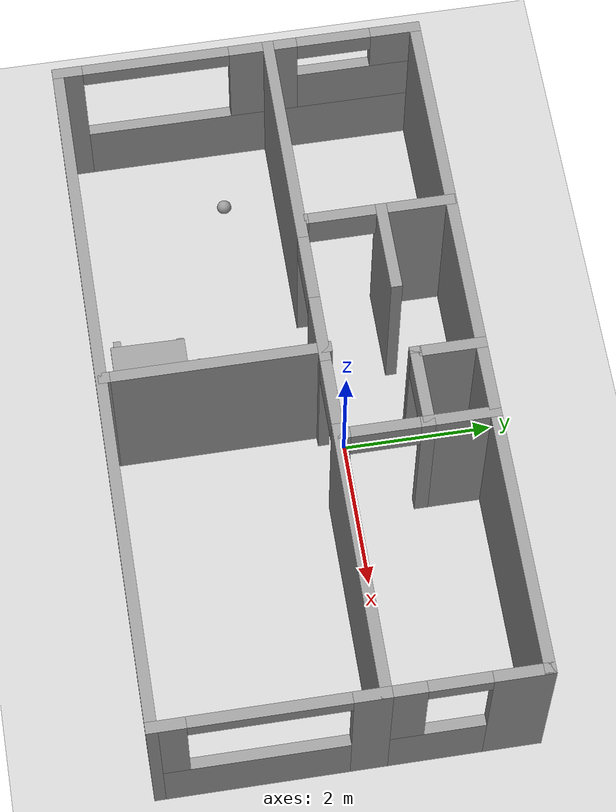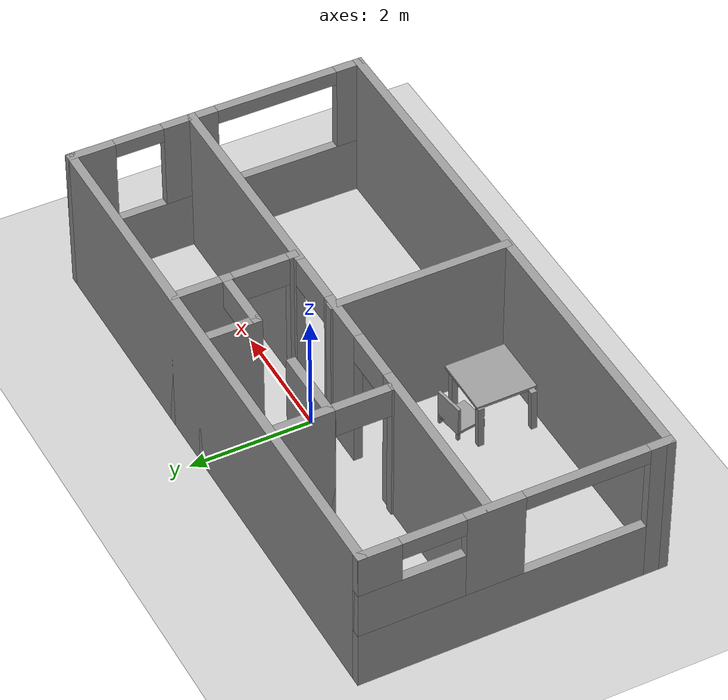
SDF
<sdf version="1.6">
 <world name="default">
  <model name="ground_plane">
   <static>1</static>
   <link name="link">
    <collision name="collision">
     <geometry><plane><normal>0 0 1</normal><size>100 100</size></plane></geometry>
     <surface><friction><ode><mu>100</mu><mu2>50</mu2></ode></friction></surface>
    </collision>
    <visual name="visual">
     <cast_shadows>0</cast_shadows>
     <geometry><plane><normal>0 0 1</normal><size>100 100</size></plane></geometry>
     <material>
      <script><uri>file://media/materials/scripts/gazebo.material</uri><name>Gazebo/Grey</name></script>
     </material>
    </visual>
   </link>
  </model>
  <model name="1stfloor">
   <pose>-0.226451 -0.689234 0 0 -0 0</pose>
   <link name="Wall_0">
    <pose>0 0.425 0 0 -0 0</pose>
    <visual name="Wall_0_Visual_0">
     <pose>-3.21576 0 1.25 0 -0 0</pose>
     <geometry><box><size>3.06848 0.15 2.5</size></box></geometry>
     <material>
      <script><uri>file://media/materials/scripts/gazebo.material</uri><name>Gazebo/Grey</name></script>
      <ambient>1 1 1 1</ambient>
     </material>
     <meta><layer>0</layer></meta>
    </visual>
    <collision name="Wall_0_Collision_0">
     <geometry><box><size>3.06848 0.15 2.5</size></box></geometry>
     <pose>-3.21576 0 1.25 0 -0 0</pose>
    </collision>
    <visual name="Wall_0_Visual_1">
     <pose>-0.318478 0 1.25 0 -0 0</pose>
     <geometry><box><size>0.926087 0.15 2.5</size></box></geometry>
     <material>
      <script><uri>file://media/materials/scripts/gazebo.material</uri><name>Gazebo/Grey</name></script>
      <ambient>1 1 1 1</ambient>
     </material>
     <meta><layer>0</layer></meta>
    </visual>
    <collision name="Wall_0_Collision_1">
     <geometry><box><size>0.926087 0.15 2.5</size></box></geometry>
     <pose>-0.318478 0 1.25 0 -0 0</pose>
    </collision>
    <visual name="Wall_0_Visual_2">
     <pose>2.89728 0 1.25 0 -0 0</pose>
     <geometry><box><size>3.70544 0.15 2.5</size></box></geometry>
     <material>
      <script><uri>file://media/materials/scripts/gazebo.material</uri><name>Gazebo/Grey</name></script>
      <ambient>1 1 1 1</ambient>
     </material>
     <meta><layer>0</layer></meta>
    </visual>
    <collision name="Wall_0_Collision_2">
     <geometry><box><size>3.70544 0.15 2.5</size></box></geometry>
     <pose>2.89728 0 1.25 0 -0 0</pose>
    </collision>
    <visual name="Wall_0_Visual_3">
     <pose>-1.23152 0 2.25 0 -0 0</pose>
     <geometry><box><size>0.9 0.15 0.5</size></box></geometry>
     <material>
      <script><uri>file://media/materials/scripts/gazebo.material</uri><name>Gazebo/Grey</name></script>
      <ambient>1 1 1 1</ambient>
     </material>
     <meta><layer>0</layer></meta>
    </visual>
    <collision name="Wall_0_Collision_3">
     <geometry><box><size>0.9 0.15 0.5</size></box></geometry>
     <pose>-1.23152 0 2.25 0 -0 0</pose>
    </collision>
    <visual name="Wall_0_Visual_4">
     <pose>0.594565 0 2.25 0 -0 0</pose>
     <geometry><box><size>0.9 0.15 0.5</size></box></geometry>
     <material>
      <script><uri>file://media/materials/scripts/gazebo.material</uri><name>Gazebo/Grey</name></script>
      <ambient>1 1 1 1</ambient>
     </material>
     <meta><layer>0</layer></meta>
    </visual>
    <collision name="Wall_0_Collision_4">
     <geometry><box><size>0.9 0.15 0.5</size></box></geometry>
     <pose>0.594565 0 2.25 0 -0 0</pose>
    </collision>
   </link>
   <link name="Wall_1">
    <pose>4.675 -1 0 0 0 -1.5708</pose>
    <visual name="Wall_1_Visual_0">
     <pose>-1.2588 0 1.25 0 -0 0</pose>
     <geometry><box><size>0.482391 0.15 2.5</size></box></geometry>
     <material>
      <script><uri>file://media/materials/scripts/gazebo.material</uri><name>Gazebo/Grey</name></script>
      <ambient>1 1 1 1</ambient>
     </material>
     <meta><layer>0</layer></meta>
    </visual>
    <collision name="Wall_1_Collision_0">
     <geometry><box><size>0.482391 0.15 2.5</size></box></geometry>
     <pose>-1.2588 0 1.25 0 -0 0</pose>
    </collision>
    <visual name="Wall_1_Visual_1">
     <pose>0.241196 0 0.5 0 -0 0</pose>
     <geometry><box><size>2.51761 0.15 1</size></box></geometry>
     <material>
      <script><uri>file://media/materials/scripts/gazebo.material</uri><name>Gazebo/Grey</name></script>
      <ambient>1 1 1 1</ambient>
     </material>
     <meta><layer>0</layer></meta>
    </visual>
    <collision name="Wall_1_Collision_1">
     <geometry><box><size>2.51761 0.15 1</size></box></geometry>
     <pose>0.241196 0 0.5 0 -0 0</pose>
    </collision>
    <visual name="Wall_1_Visual_2">
     <pose>1.2512 0 1.75 0 -0 0</pose>
     <geometry><box><size>0.497609 0.15 1.5</size></box></geometry>
     <material>
      <script><uri>file://media/materials/scripts/gazebo.material</uri><name>Gazebo/Grey</name></script>
      <ambient>1 1 1 1</ambient>
     </material>
     <meta><layer>0</layer></meta>
    </visual>
    <collision name="Wall_1_Collision_2">
     <geometry><box><size>0.497609 0.15 1.5</size></box></geometry>
     <pose>1.2512 0 1.75 0 -0 0</pose>
    </collision>
    <visual name="Wall_1_Visual_3">
     <pose>-0.007609 0 2.375 0 -0 0</pose>
     <geometry><box><size>2.02 0.15 0.25</size></box></geometry>
     <material>
      <script><uri>file://media/materials/scripts/gazebo.material</uri><name>Gazebo/Grey</name></script>
      <ambient>1 1 1 1</ambient>
     </material>
     <meta><layer>0</layer></meta>
    </visual>
    <collision name="Wall_1_Collision_3">
     <geometry><box><size>2.02 0.15 0.25</size></box></geometry>
     <pose>-0.007609 0 2.375 0 -0 0</pose>
    </collision>
   </link>
   <link name="Wall_10">
    <collision name="Wall_10_Collision">
     <geometry><box><size>3 0.15 2.5</size></box></geometry>
     <pose>0 0 1.25 0 -0 0</pose>
    </collision>
    <visual name="Wall_10_Visual">
     <pose>0 0 1.25 0 -0 0</pose>
     <geometry><box><size>3 0.15 2.5</size></box></geometry>
     <material>
      <script><uri>file://media/materials/scripts/gazebo.material</uri><name>Gazebo/Grey</name></script>
      <ambient>1 1 1 1</ambient>
     </material>
     <meta><layer>0</layer></meta>
    </visual>
    <pose>-0.048913 -0.965217 0 0 0 -1.5708</pose>
   </link>
   <link name="Wall_11">
    <collision name="Wall_11_Collision">
     <geometry><box><size>0.15 0.15 2.5</size></box></geometry>
     <pose>0 0 1.25 0 -0 0</pose>
    </collision>
    <visual name="Wall_11_Visual">
     <pose>0 0 1.25 0 -0 0</pose>
     <geometry><box><size>0.15 0.15 2.5</size></box></geometry>
     <material>
      <script><uri>file://media/materials/scripts/gazebo.material</uri><name>Gazebo/Grey</name></script>
      <ambient>1 1 1 1</ambient>
     </material>
     <meta><layer>0</layer></meta>
    </visual>
    <pose>-0.048913 -2.39022 0 0 -0 0</pose>
   </link>
   <link name="Wall_13">
    <pose>-1.94457 1.48261 0 0 0 -1.5708</pose>
    <visual name="Wall_13_Visual_0">
     <pose>-0.474457 0 1.25 0 -0 0</pose>
     <geometry><box><size>1.05109 0.15 2.5</size></box></geometry>
     <material>
      <script><uri>file://media/materials/scripts/gazebo.material</uri><name>Gazebo/Grey</name></script>
      <ambient>1 1 1 1</ambient>
     </material>
     <meta><layer>0</layer></meta>
    </visual>
    <collision name="Wall_13_Collision_0">
     <geometry><box><size>1.05109 0.15 2.5</size></box></geometry>
     <pose>-0.474457 0 1.25 0 -0 0</pose>
    </collision>
    <visual name="Wall_13_Visual_1">
     <pose>0.975543 0 1.25 0 -0 0</pose>
     <geometry><box><size>0.048913 0.15 2.5</size></box></geometry>
     <material>
      <script><uri>file://media/materials/scripts/gazebo.material</uri><name>Gazebo/Grey</name></script>
      <ambient>1 1 1 1</ambient>
     </material>
     <meta><layer>0</layer></meta>
    </visual>
    <collision name="Wall_13_Collision_1">
     <geometry><box><size>0.048913 0.15 2.5</size></box></geometry>
     <pose>0.975543 0 1.25 0 -0 0</pose>
    </collision>
    <visual name="Wall_13_Visual_2">
     <pose>0.501087 0 2.25 0 -0 0</pose>
     <geometry><box><size>0.9 0.15 0.5</size></box></geometry>
     <material>
      <script><uri>file://media/materials/scripts/gazebo.material</uri><name>Gazebo/Grey</name></script>
      <ambient>1 1 1 1</ambient>
     </material>
     <meta><layer>0</layer></meta>
    </visual>
    <collision name="Wall_13_Collision_2">
     <geometry><box><size>0.9 0.15 0.5</size></box></geometry>
     <pose>0.501087 0 2.25 0 -0 0</pose>
    </collision>
   </link>
   <link name="Wall_15">
    <collision name="Wall_15_Collision">
     <geometry><box><size>1 0.15 2.5</size></box></geometry>
     <pose>0 0 1.25 0 -0 0</pose>
    </collision>
    <visual name="Wall_15_Visual">
     <pose>0 0 1.25 0 -0 0</pose>
     <geometry><box><size>1 0.15 2.5</size></box></geometry>
     <material>
      <script><uri>file://media/materials/scripts/gazebo.material</uri><name>Gazebo/Grey</name></script>
      <ambient>1 1 1 1</ambient>
     </material>
     <meta><layer>0</layer></meta>
    </visual>
    <pose>0.194565 2 0 0 0 -1.5708</pose>
   </link>
   <link name="Wall_17">
    <collision name="Wall_17_Collision">
     <geometry><box><size>1 0.15 2.5</size></box></geometry>
     <pose>0 0 1.25 0 -0 0</pose>
    </collision>
    <visual name="Wall_17_Visual">
     <pose>0 0 1.25 0 -0 0</pose>
     <geometry><box><size>1 0.15 2.5</size></box></geometry>
     <material>
      <script><uri>file://media/materials/scripts/gazebo.material</uri><name>Gazebo/Grey</name></script>
      <ambient>1 1 1 1</ambient>
     </material>
     <meta><layer>0</layer></meta>
    </visual>
    <pose>1.18587 2 0 0 0 -1.5708</pose>
   </link>
   <link name="Wall_18">
    <pose>0.690217 1.575 0 0 -0 3.14159</pose>
    <visual name="Wall_18_Visual_0">
     <pose>-0.497283 0 1.25 0 -0 0</pose>
     <geometry><box><size>0.146739 0.15 2.5</size></box></geometry>
     <material>
      <script><uri>file://media/materials/scripts/gazebo.material</uri><name>Gazebo/Grey</name></script>
      <ambient>1 1 1 1</ambient>
     </material>
     <meta><layer>0</layer></meta>
    </visual>
    <collision name="Wall_18_Collision_0">
     <geometry><box><size>0.146739 0.15 2.5</size></box></geometry>
     <pose>-0.497283 0 1.25 0 -0 0</pose>
    </collision>
    <visual name="Wall_18_Visual_1">
     <pose>0.52337 0 1.25 0 -0 0</pose>
     <geometry><box><size>0.094565 0.15 2.5</size></box></geometry>
     <material>
      <script><uri>file://media/materials/scripts/gazebo.material</uri><name>Gazebo/Grey</name></script>
      <ambient>1 1 1 1</ambient>
     </material>
     <meta><layer>0</layer></meta>
    </visual>
    <collision name="Wall_18_Collision_1">
     <geometry><box><size>0.094565 0.15 2.5</size></box></geometry>
     <pose>0.52337 0 1.25 0 -0 0</pose>
    </collision>
    <visual name="Wall_18_Visual_2">
     <pose>0.026087 0 2.25 0 -0 0</pose>
     <geometry><box><size>0.9 0.15 0.5</size></box></geometry>
     <material>
      <script><uri>file://media/materials/scripts/gazebo.material</uri><name>Gazebo/Grey</name></script>
      <ambient>1 1 1 1</ambient>
     </material>
     <meta><layer>0</layer></meta>
    </visual>
    <collision name="Wall_18_Collision_2">
     <geometry><box><size>0.9 0.15 0.5</size></box></geometry>
     <pose>0.026087 0 2.25 0 -0 0</pose>
    </collision>
   </link>
   <link name="Wall_19">
    <collision name="Wall_19_Collision">
     <geometry><box><size>0.15 0.15 2.5</size></box></geometry>
     <pose>0 0 1.25 0 -0 0</pose>
    </collision>
    <visual name="Wall_19_Visual">
     <pose>0 0 1.25 0 -0 0</pose>
     <geometry><box><size>0.15 0.15 2.5</size></box></geometry>
     <material>
      <script><uri>file://media/materials/scripts/gazebo.material</uri><name>Gazebo/Grey</name></script>
      <ambient>1 1 1 1</ambient>
     </material>
     <meta><layer>0</layer></meta>
    </visual>
    <pose>0.194565 1.575 0 0 -0 0</pose>
   </link>
   <link name="Wall_2">
    <collision name="Wall_2_Collision">
     <geometry><box><size>9.5 0.15 2.5</size></box></geometry>
     <pose>0 0 1.25 0 -0 0</pose>
    </collision>
    <visual name="Wall_2_Visual">
     <pose>0 0 1.25 0 -0 0</pose>
     <geometry><box><size>9.5 0.15 2.5</size></box></geometry>
     <material>
      <script><uri>file://media/materials/scripts/gazebo.material</uri><name>Gazebo/Grey</name></script>
      <ambient>1 1 1 1</ambient>
     </material>
     <meta><layer>0</layer></meta>
    </visual>
    <pose>0 -2.425 0 0 -0 3.14159</pose>
   </link>
   <link name="Wall_21">
    <pose>1.18587 1.025 0 0 0 -1.5708</pose>
    <visual name="Wall_21_Visual_0">
     <pose>-0.533152 0 1.25 0 -0 0</pose>
     <geometry><box><size>0.183696 0.15 2.5</size></box></geometry>
     <material>
      <script><uri>file://media/materials/scripts/gazebo.material</uri><name>Gazebo/Grey</name></script>
      <ambient>1 1 1 1</ambient>
     </material>
     <meta><layer>0</layer></meta>
    </visual>
    <collision name="Wall_21_Collision_0">
     <geometry><box><size>0.183696 0.15 2.5</size></box></geometry>
     <pose>-0.533152 0 1.25 0 -0 0</pose>
    </collision>
    <visual name="Wall_21_Visual_1">
     <pose>0.541848 0 1.25 0 -0 0</pose>
     <geometry><box><size>0.166304 0.15 2.5</size></box></geometry>
     <material>
      <script><uri>file://media/materials/scripts/gazebo.material</uri><name>Gazebo/Grey</name></script>
      <ambient>1 1 1 1</ambient>
     </material>
     <meta><layer>0</layer></meta>
    </visual>
    <collision name="Wall_21_Collision_1">
     <geometry><box><size>0.166304 0.15 2.5</size></box></geometry>
     <pose>0.541848 0 1.25 0 -0 0</pose>
    </collision>
    <visual name="Wall_21_Visual_2">
     <pose>0.008696 0 2.25 0 -0 0</pose>
     <geometry><box><size>0.9 0.15 0.5</size></box></geometry>
     <material>
      <script><uri>file://media/materials/scripts/gazebo.material</uri><name>Gazebo/Grey</name></script>
      <ambient>1 1 1 1</ambient>
     </material>
     <meta><layer>0</layer></meta>
    </visual>
    <collision name="Wall_21_Collision_2">
     <geometry><box><size>0.9 0.15 0.5</size></box></geometry>
     <pose>0.008696 0 2.25 0 -0 0</pose>
    </collision>
   </link>
   <link name="Wall_23">
    <collision name="Wall_23_Collision">
     <geometry><box><size>1.25 0.15 2.5</size></box></geometry>
     <pose>0 0 1.25 0 -0 0</pose>
    </collision>
    <visual name="Wall_23_Visual">
     <pose>0 0 1.25 0 -0 0</pose>
     <geometry><box><size>1.25 0.15 2.5</size></box></geometry>
     <material>
      <script><uri>file://media/materials/scripts/gazebo.material</uri><name>Gazebo/Grey</name></script>
      <ambient>1 1 1 1</ambient>
     </material>
     <meta><layer>0</layer></meta>
    </visual>
    <pose>-1.39457 1.50326 0 0 -0 0</pose>
   </link>
   <link name="Wall_3">
    <pose>-4.675 0 0 0 -0 1.5708</pose>
    <visual name="Wall_3_Visual_0">
     <pose>-2.29772 0 1.25 0 -0 0</pose>
     <geometry><box><size>0.404565 0.15 2.5</size></box></geometry>
     <material>
      <script><uri>file://media/materials/scripts/gazebo.material</uri><name>Gazebo/Grey</name></script>
      <ambient>1 1 1 1</ambient>
     </material>
     <meta><layer>0</layer></meta>
    </visual>
    <collision name="Wall_3_Collision_0">
     <geometry><box><size>0.404565 0.15 2.5</size></box></geometry>
     <pose>-2.29772 0 1.25 0 -0 0</pose>
    </collision>
    <visual name="Wall_3_Visual_1">
     <pose>0.202283 0 0.5 0 -0 0</pose>
     <geometry><box><size>4.59544 0.15 1</size></box></geometry>
     <material>
      <script><uri>file://media/materials/scripts/gazebo.material</uri><name>Gazebo/Grey</name></script>
      <ambient>1 1 1 1</ambient>
     </material>
     <meta><layer>0</layer></meta>
    </visual>
    <collision name="Wall_3_Collision_1">
     <geometry><box><size>4.59544 0.15 1</size></box></geometry>
     <pose>0.202283 0 0.5 0 -0 0</pose>
    </collision>
    <visual name="Wall_3_Visual_2">
     <pose>0.348261 0 1.75 0 -0 0</pose>
     <geometry><box><size>0.927391 0.15 1.5</size></box></geometry>
     <material>
      <script><uri>file://media/materials/scripts/gazebo.material</uri><name>Gazebo/Grey</name></script>
      <ambient>1 1 1 1</ambient>
     </material>
     <meta><layer>0</layer></meta>
    </visual>
    <collision name="Wall_3_Collision_2">
     <geometry><box><size>0.927391 0.15 1.5</size></box></geometry>
     <pose>0.348261 0 1.75 0 -0 0</pose>
    </collision>
    <visual name="Wall_3_Visual_3">
     <pose>1.65598 0 1.4 0 -0 0</pose>
     <geometry><box><size>1.68804 0.15 0.8</size></box></geometry>
     <material>
      <script><uri>file://media/materials/scripts/gazebo.material</uri><name>Gazebo/Grey</name></script>
      <ambient>1 1 1 1</ambient>
     </material>
     <meta><layer>0</layer></meta>
    </visual>
    <collision name="Wall_3_Collision_3">
     <geometry><box><size>1.68804 0.15 0.8</size></box></geometry>
     <pose>1.65598 0 1.4 0 -0 0</pose>
    </collision>
    <visual name="Wall_3_Visual_4">
     <pose>2.15598 0 2.15 0 -0 0</pose>
     <geometry><box><size>0.688044 0.15 0.7</size></box></geometry>
     <material>
      <script><uri>file://media/materials/scripts/gazebo.material</uri><name>Gazebo/Grey</name></script>
      <ambient>1 1 1 1</ambient>
     </material>
     <meta><layer>0</layer></meta>
    </visual>
    <collision name="Wall_3_Collision_4">
     <geometry><box><size>0.688044 0.15 0.7</size></box></geometry>
     <pose>2.15598 0 2.15 0 -0 0</pose>
    </collision>
    <visual name="Wall_3_Visual_5">
     <pose>1.31196 0 2.35 0 -0 0</pose>
     <geometry><box><size>1 0.15 0.3</size></box></geometry>
     <material>
      <script><uri>file://media/materials/scripts/gazebo.material</uri><name>Gazebo/Grey</name></script>
      <ambient>1 1 1 1</ambient>
     </material>
     <meta><layer>0</layer></meta>
    </visual>
    <collision name="Wall_3_Collision_5">
     <geometry><box><size>1 0.15 0.3</size></box></geometry>
     <pose>1.31196 0 2.35 0 -0 0</pose>
    </collision>
    <visual name="Wall_3_Visual_6">
     <pose>-1.10543 0 2.375 0 -0 0</pose>
     <geometry><box><size>1.98 0.15 0.25</size></box></geometry>
     <material>
      <script><uri>file://media/materials/scripts/gazebo.material</uri><name>Gazebo/Grey</name></script>
      <ambient>1 1 1 1</ambient>
     </material>
     <meta><layer>0</layer></meta>
    </visual>
    <collision name="Wall_3_Collision_6">
     <geometry><box><size>1.98 0.15 0.25</size></box></geometry>
     <pose>-1.10543 0 2.375 0 -0 0</pose>
    </collision>
   </link>
   <link name="Wall_4">
    <collision name="Wall_4_Collision">
     <geometry><box><size>9.5 0.15 2.5</size></box></geometry>
     <pose>0 0 1.25 0 -0 0</pose>
    </collision>
    <visual name="Wall_4_Visual">
     <pose>0 0 1.25 0 -0 0</pose>
     <geometry><box><size>9.5 0.15 2.5</size></box></geometry>
     <material>
      <script><uri>file://media/materials/scripts/gazebo.material</uri><name>Gazebo/Grey</name></script>
      <ambient>1 1 1 1</ambient>
     </material>
     <meta><layer>0</layer></meta>
    </visual>
    <pose>0 2.425 0 0 -0 0</pose>
   </link>
   <link name="Wall_5">
    <collision name="Wall_5_Collision">
     <geometry><box><size>0.15 0.15 2.5</size></box></geometry>
     <pose>0 0 1.25 0 -0 0</pose>
    </collision>
    <visual name="Wall_5_Visual">
     <pose>0 0 1.25 0 -0 0</pose>
     <geometry><box><size>0.15 0.15 2.5</size></box></geometry>
     <material>
      <script><uri>file://media/materials/scripts/gazebo.material</uri><name>Gazebo/Grey</name></script>
      <ambient>1 1 1 1</ambient>
     </material>
     <meta><layer>0</layer></meta>
    </visual>
    <pose>4.675 2.425 0 0 -0 0</pose>
   </link>
   <link name="Wall_7">
    <pose>4.675 1.425 0 0 0 -1.5708</pose>
    <visual name="Wall_7_Visual_0">
     <pose>-0.689674 0 1.25 0 -0 0</pose>
     <geometry><box><size>0.770652 0.15 2.5</size></box></geometry>
     <material>
      <script><uri>file://media/materials/scripts/gazebo.material</uri><name>Gazebo/Grey</name></script>
      <ambient>1 1 1 1</ambient>
     </material>
     <meta><layer>0</layer></meta>
    </visual>
    <collision name="Wall_7_Collision_0">
     <geometry><box><size>0.770652 0.15 2.5</size></box></geometry>
     <pose>-0.689674 0 1.25 0 -0 0</pose>
    </collision>
    <visual name="Wall_7_Visual_1">
     <pose>0.385326 0 0.5 0 -0 0</pose>
     <geometry><box><size>1.37935 0.15 1</size></box></geometry>
     <material>
      <script><uri>file://media/materials/scripts/gazebo.material</uri><name>Gazebo/Grey</name></script>
      <ambient>1 1 1 1</ambient>
     </material>
     <meta><layer>0</layer></meta>
    </visual>
    <collision name="Wall_7_Collision_1">
     <geometry><box><size>1.37935 0.15 1</size></box></geometry>
     <pose>0.385326 0 0.5 0 -0 0</pose>
    </collision>
    <visual name="Wall_7_Visual_2">
     <pose>0.785326 0 1.75 0 -0 0</pose>
     <geometry><box><size>0.579348 0.15 1.5</size></box></geometry>
     <material>
      <script><uri>file://media/materials/scripts/gazebo.material</uri><name>Gazebo/Grey</name></script>
      <ambient>1 1 1 1</ambient>
     </material>
     <meta><layer>0</layer></meta>
    </visual>
    <collision name="Wall_7_Collision_2">
     <geometry><box><size>0.579348 0.15 1.5</size></box></geometry>
     <pose>0.785326 0 1.75 0 -0 0</pose>
    </collision>
    <visual name="Wall_7_Visual_3">
     <pose>0.095652 0 2.375 0 -0 0</pose>
     <geometry><box><size>0.8 0.15 0.25</size></box></geometry>
     <material>
      <script><uri>file://media/materials/scripts/gazebo.material</uri><name>Gazebo/Grey</name></script>
      <ambient>1 1 1 1</ambient>
     </material>
     <meta><layer>0</layer></meta>
    </visual>
    <collision name="Wall_7_Collision_3">
     <geometry><box><size>0.8 0.15 0.25</size></box></geometry>
     <pose>0.095652 0 2.375 0 -0 0</pose>
    </collision>
   </link>
   <link name="Wall_8">
    <collision name="Wall_8_Collision">
     <geometry><box><size>0.15 0.15 2.5</size></box></geometry>
     <pose>0 0 1.25 0 -0 0</pose>
    </collision>
    <visual name="Wall_8_Visual">
     <pose>0 0 1.25 0 -0 0</pose>
     <geometry><box><size>0.15 0.15 2.5</size></box></geometry>
     <material>
      <script><uri>file://media/materials/scripts/gazebo.material</uri><name>Gazebo/Grey</name></script>
      <ambient>1 1 1 1</ambient>
     </material>
     <meta><layer>0</layer></meta>
    </visual>
    <pose>4.675 0.425 0 0 -0 0</pose>
   </link>
   <static>1</static>
  </model>
  <model name="table">
   <link name="link_2">
    <pose>-0.000914 0.01077 -0.287764 0 -0 0</pose>
    <inertial>
     <mass>1</mass>
     <inertia>
      <ixx>0.166667</ixx>
      <ixy>0</ixy>
      <ixz>0</ixz>
      <iyy>0.166667</iyy>
      <iyz>0</iyz>
      <izz>0.166667</izz>
     </inertia>
    </inertial>
    <visual name="visual">
     <pose>0 0 0.75 0 -0 0</pose>
     <geometry><box><size>1 1 0.05</size></box></geometry>
     <material>
      <lighting>1</lighting>
      <script><uri>file://media/materials/scripts/gazebo.material</uri><name>Gazebo/Grey</name></script>
      <ambient>0.3 0.3 0.3 1</ambient>
      <diffuse>0.7 0.7 0.7 1</diffuse>
      <specular>0.01 0.01 0.01 1</specular>
      <emissive>0 0 0 1</emissive>
      <shader type="vertex"><normal_map>__default__</normal_map></shader>
     </material>
    </visual>
    <collision name="collision">
     <pose>0 0 0.75 0 -0 0</pose>
     <geometry><box><size>1 1 0.05</size></box></geometry>
     <surface>
      <friction>
       <ode><mu>1</mu><mu2>1</mu2><fdir1>0 0 0</fdir1><slip1>0</slip1><slip2>0</slip2></ode>
       <torsional>
        <coefficient>1</coefficient>
        <patch_radius>0</patch_radius>
        <surface_radius>0</surface_radius>
        <use_patch_radius>1</use_patch_radius>
        <ode><slip>0</slip></ode>
       </torsional>
      </friction>
      <bounce><restitution_coefficient>0</restitution_coefficient><threshold>1e+06</threshold></bounce>
      <contact>
       <collide_without_contact>0</collide_without_contact>
       <collide_without_contact_bitmask>1</collide_without_contact_bitmask>
       <collide_bitmask>1</collide_bitmask>
       <ode>
        <soft_cfm>0</soft_cfm>
        <soft_erp>0.2</soft_erp>
        <kp>1e+13</kp>
        <kd>1</kd>
        <max_vel>0.01</max_vel>
        <min_depth>0</min_depth>
       </ode>
       <bullet>
        <split_impulse>1</split_impulse>
        <split_impulse_penetration_threshold>-0.01</split_impulse_penetration_threshold>
        <soft_cfm>0</soft_cfm>
        <soft_erp>0.2</soft_erp>
        <kp>1e+13</kp>
        <kd>1</kd>
       </bullet>
      </contact>
     </surface>
    </collision>
   </link>
   <link name="link_3">
    <pose>-0.483131 0.454991 0.080236 0 -0 0</pose>
    <inertial>
     <mass>1</mass>
     <inertia>
      <ixx>0.166667</ixx>
      <ixy>0</ixy>
      <ixz>0</ixz>
      <iyy>0.166667</iyy>
      <iyz>0</iyz>
      <izz>0.166667</izz>
     </inertia>
    </inertial>
    <visual name="visual">
     <geometry><box><size>0.1 0.1 0.75</size></box></geometry>
     <material>
      <lighting>1</lighting>
      <script><uri>file://media/materials/scripts/gazebo.material</uri><name>Gazebo/Grey</name></script>
      <ambient>0.3 0.3 0.3 1</ambient>
      <diffuse>0.7 0.7 0.7 1</diffuse>
      <specular>0.01 0.01 0.01 1</specular>
      <emissive>0 0 0 1</emissive>
      <shader type="vertex"><normal_map>__default__</normal_map></shader>
     </material>
    </visual>
    <collision name="collision">
     <geometry><box><size>0.1 0.1 0.75</size></box></geometry>
     <surface>
      <friction>
       <ode><mu>1</mu><mu2>1</mu2><fdir1>0 0 0</fdir1><slip1>0</slip1><slip2>0</slip2></ode>
       <torsional>
        <coefficient>1</coefficient>
        <patch_radius>0</patch_radius>
        <surface_radius>0</surface_radius>
        <use_patch_radius>1</use_patch_radius>
        <ode><slip>0</slip></ode>
       </torsional>
      </friction>
      <bounce><restitution_coefficient>0</restitution_coefficient><threshold>1e+06</threshold></bounce>
      <contact>
       <collide_without_contact>0</collide_without_contact>
       <collide_without_contact_bitmask>1</collide_without_contact_bitmask>
       <collide_bitmask>1</collide_bitmask>
       <ode>
        <soft_cfm>0</soft_cfm>
        <soft_erp>0.2</soft_erp>
        <kp>1e+13</kp>
        <kd>1</kd>
        <max_vel>0.01</max_vel>
        <min_depth>0</min_depth>
       </ode>
       <bullet>
        <split_impulse>1</split_impulse>
        <split_impulse_penetration_threshold>-0.01</split_impulse_penetration_threshold>
        <soft_cfm>0</soft_cfm>
        <soft_erp>0.2</soft_erp>
        <kp>1e+13</kp>
        <kd>1</kd>
       </bullet>
      </contact>
     </surface>
    </collision>
   </link>
   <link name="link_3_clone_0">
    <pose>0.45366 -0.416964 0.047057 0 -0 0</pose>
    <inertial>
     <mass>1</mass>
     <inertia>
      <ixx>0.166667</ixx>
      <ixy>0</ixy>
      <ixz>0</ixz>
      <iyy>0.166667</iyy>
      <iyz>0</iyz>
      <izz>0.166667</izz>
     </inertia>
    </inertial>
    <visual name="visual">
     <geometry><box><size>0.1 0.1 0.75</size></box></geometry>
     <material>
      <lighting>1</lighting>
      <script><uri>file://media/materials/scripts/gazebo.material</uri><name>Gazebo/Grey</name></script>
      <ambient>0.3 0.3 0.3 1</ambient>
      <diffuse>0.7 0.7 0.7 1</diffuse>
      <specular>0.01 0.01 0.01 1</specular>
      <emissive>0 0 0 1</emissive>
      <shader type="vertex"><normal_map>__default__</normal_map></shader>
     </material>
    </visual>
    <collision name="collision">
     <geometry><box><size>0.1 0.1 0.75</size></box></geometry>
     <surface>
      <friction>
       <ode><mu>1</mu><mu2>1</mu2><fdir1>0 0 0</fdir1><slip1>0</slip1><slip2>0</slip2></ode>
       <torsional>
        <coefficient>1</coefficient>
        <patch_radius>0</patch_radius>
        <surface_radius>0</surface_radius>
        <use_patch_radius>1</use_patch_radius>
        <ode><slip>0</slip></ode>
       </torsional>
      </friction>
      <bounce><restitution_coefficient>0</restitution_coefficient><threshold>1e+06</threshold></bounce>
      <contact>
       <collide_without_contact>0</collide_without_contact>
       <collide_without_contact_bitmask>1</collide_without_contact_bitmask>
       <collide_bitmask>1</collide_bitmask>
       <ode>
        <soft_cfm>0</soft_cfm>
        <soft_erp>0.2</soft_erp>
        <kp>1e+13</kp>
        <kd>1</kd>
        <max_vel>0.01</max_vel>
        <min_depth>0</min_depth>
       </ode>
       <bullet>
        <split_impulse>1</split_impulse>
        <split_impulse_penetration_threshold>-0.01</split_impulse_penetration_threshold>
        <soft_cfm>0</soft_cfm>
        <soft_erp>0.2</soft_erp>
        <kp>1e+13</kp>
        <kd>1</kd>
       </bullet>
      </contact>
     </surface>
    </collision>
   </link>
   <link name="link_3_clone_0_clone">
    <pose>-0.543347 -0.399935 0.089996 -0.02 -0 -0</pose>
    <inertial>
     <mass>1</mass>
     <inertia>
      <ixx>0.166667</ixx>
      <ixy>0</ixy>
      <ixz>0</ixz>
      <iyy>0.166667</iyy>
      <iyz>0</iyz>
      <izz>0.166667</izz>
     </inertia>
    </inertial>
    <visual name="visual">
     <geometry><box><size>0.1 0.1 0.75</size></box></geometry>
     <material>
      <lighting>1</lighting>
      <script><uri>file://media/materials/scripts/gazebo.material</uri><name>Gazebo/Grey</name></script>
      <ambient>0.3 0.3 0.3 1</ambient>
      <diffuse>0.7 0.7 0.7 1</diffuse>
      <specular>0.01 0.01 0.01 1</specular>
      <emissive>0 0 0 1</emissive>
      <shader type="vertex"><normal_map>__default__</normal_map></shader>
     </material>
    </visual>
    <collision name="collision">
     <geometry><box><size>0.1 0.1 0.75</size></box></geometry>
     <surface>
      <friction>
       <ode><mu>1</mu><mu2>1</mu2><fdir1>0 0 0</fdir1><slip1>0</slip1><slip2>0</slip2></ode>
       <torsional>
        <coefficient>1</coefficient>
        <patch_radius>0</patch_radius>
        <surface_radius>0</surface_radius>
        <use_patch_radius>1</use_patch_radius>
        <ode><slip>0</slip></ode>
       </torsional>
      </friction>
      <bounce><restitution_coefficient>0</restitution_coefficient><threshold>1e+06</threshold></bounce>
      <contact>
       <collide_without_contact>0</collide_without_contact>
       <collide_without_contact_bitmask>1</collide_without_contact_bitmask>
       <collide_bitmask>1</collide_bitmask>
       <ode>
        <soft_cfm>0</soft_cfm>
        <soft_erp>0.2</soft_erp>
        <kp>1e+13</kp>
        <kd>1</kd>
        <max_vel>0.01</max_vel>
        <min_depth>0</min_depth>
       </ode>
       <bullet>
        <split_impulse>1</split_impulse>
        <split_impulse_penetration_threshold>-0.01</split_impulse_penetration_threshold>
        <soft_cfm>0</soft_cfm>
        <soft_erp>0.2</soft_erp>
        <kp>1e+13</kp>
        <kd>1</kd>
       </bullet>
      </contact>
     </surface>
    </collision>
   </link>
   <link name="link_3_clone_1">
    <pose>0.449089 0.399103 0.080236 0 -0 0</pose>
    <inertial>
     <mass>1</mass>
     <inertia>
      <ixx>0.166667</ixx>
      <ixy>0</ixy>
      <ixz>0</ixz>
      <iyy>0.166667</iyy>
      <iyz>0</iyz>
      <izz>0.166667</izz>
     </inertia>
    </inertial>
    <visual name="visual">
     <geometry><box><size>0.1 0.1 0.75</size></box></geometry>
     <material>
      <lighting>1</lighting>
      <script><uri>file://media/materials/scripts/gazebo.material</uri><name>Gazebo/Grey</name></script>
      <ambient>0.3 0.3 0.3 1</ambient>
      <diffuse>0.7 0.7 0.7 1</diffuse>
      <specular>0.01 0.01 0.01 1</specular>
      <emissive>0 0 0 1</emissive>
      <shader type="vertex"><normal_map>__default__</normal_map></shader>
     </material>
    </visual>
    <collision name="collision">
     <geometry><box><size>0.1 0.1 0.75</size></box></geometry>
     <surface>
      <friction>
       <ode><mu>1</mu><mu2>1</mu2><fdir1>0 0 0</fdir1><slip1>0</slip1><slip2>0</slip2></ode>
       <torsional>
        <coefficient>1</coefficient>
        <patch_radius>0</patch_radius>
        <surface_radius>0</surface_radius>
        <use_patch_radius>1</use_patch_radius>
        <ode><slip>0</slip></ode>
       </torsional>
      </friction>
      <bounce><restitution_coefficient>0</restitution_coefficient><threshold>1e+06</threshold></bounce>
      <contact>
       <collide_without_contact>0</collide_without_contact>
       <collide_without_contact_bitmask>1</collide_without_contact_bitmask>
       <collide_bitmask>1</collide_bitmask>
       <ode>
        <soft_cfm>0</soft_cfm>
        <soft_erp>0.2</soft_erp>
        <kp>1e+13</kp>
        <kd>1</kd>
        <max_vel>0.01</max_vel>
        <min_depth>0</min_depth>
       </ode>
       <bullet>
        <split_impulse>1</split_impulse>
        <split_impulse_penetration_threshold>-0.01</split_impulse_penetration_threshold>
        <soft_cfm>0</soft_cfm>
        <soft_erp>0.2</soft_erp>
        <kp>1e+13</kp>
        <kd>1</kd>
       </bullet>
      </contact>
     </surface>
    </collision>
   </link>
   <joint name="link_2_JOINT_10" type="fixed">
    <parent>link_2</parent>
    <child>link_3_clone_1</child>
    <physics>
     <ode><limit><cfm>0</cfm><erp>0.2</erp></limit><suspension><cfm>0</cfm><erp>0.2</erp></suspension></ode>
    </physics>
   </joint>
   <joint name="link_2_JOINT_11" type="fixed">
    <parent>link_2</parent>
    <child>link_3</child>
    <physics>
     <ode><limit><cfm>0</cfm><erp>0.2</erp></limit><suspension><cfm>0</cfm><erp>0.2</erp></suspension></ode>
    </physics>
   </joint>
   <joint name="link_2_JOINT_12" type="fixed">
    <parent>link_2</parent>
    <child>link_3_clone_0_clone</child>
    <physics>
     <ode><limit><cfm>0</cfm><erp>0.2</erp></limit><suspension><cfm>0</cfm><erp>0.2</erp></suspension></ode>
    </physics>
   </joint>
   <joint name="link_2_JOINT_8" type="fixed">
    <parent>link_2</parent>
    <child>link_3_clone_0</child>
    <physics>
     <ode><limit><cfm>0</cfm><erp>0.2</erp></limit><suspension><cfm>0</cfm><erp>0.2</erp></suspension></ode>
    </physics>
   </joint>
   <joint name="link_2_JOINT_9" type="fixed">
    <parent>link_2</parent>
    <child>link_3</child>
    <physics>
     <ode><limit><cfm>0</cfm><erp>0.2</erp></limit><suspension><cfm>0</cfm><erp>0.2</erp></suspension></ode>
    </physics>
   </joint>
   <static>0</static>
   <pose>-1.07282 -2.44989 0.309674 -0.017788 -0.001792 -0.005431</pose>
  </model>
  <model name="Chair">
   <link name="link_5">
    <pose>-0.225 0.256445 -0.120833 0 -0 0</pose>
    <inertial>
     <mass>1</mass>
     <inertia>
      <ixx>0.166667</ixx>
      <ixy>0</ixy>
      <ixz>0</ixz>
      <iyy>0.166667</iyy>
      <iyz>0</iyz>
      <izz>0.166667</izz>
     </inertia>
    </inertial>
    <visual name="visual">
     <geometry><box><size>0.05 0.05 0.45</size></box></geometry>
     <material>
      <lighting>1</lighting>
      <script><uri>file://media/materials/scripts/gazebo.material</uri><name>Gazebo/Grey</name></script>
      <ambient>0.3 0.3 0.3 1</ambient>
      <diffuse>0.7 0.7 0.7 1</diffuse>
      <specular>0.01 0.01 0.01 1</specular>
      <emissive>0 0 0 1</emissive>
      <shader type="vertex"><normal_map>__default__</normal_map></shader>
     </material>
    </visual>
    <collision name="collision">
     <geometry><box><size>0.05 0.05 0.45</size></box></geometry>
     <surface>
      <friction>
       <ode><mu>1</mu><mu2>1</mu2><fdir1>0 0 0</fdir1><slip1>0</slip1><slip2>0</slip2></ode>
       <torsional>
        <coefficient>1</coefficient>
        <patch_radius>0</patch_radius>
        <surface_radius>0</surface_radius>
        <use_patch_radius>1</use_patch_radius>
        <ode><slip>0</slip></ode>
       </torsional>
      </friction>
      <bounce><restitution_coefficient>0</restitution_coefficient><threshold>1e+06</threshold></bounce>
      <contact>
       <collide_without_contact>0</collide_without_contact>
       <collide_without_contact_bitmask>1</collide_without_contact_bitmask>
       <collide_bitmask>1</collide_bitmask>
       <ode>
        <soft_cfm>0</soft_cfm>
        <soft_erp>0.2</soft_erp>
        <kp>1e+13</kp>
        <kd>1</kd>
        <max_vel>0.01</max_vel>
        <min_depth>0</min_depth>
       </ode>
       <bullet>
        <split_impulse>1</split_impulse>
        <split_impulse_penetration_threshold>-0.01</split_impulse_penetration_threshold>
        <soft_cfm>0</soft_cfm>
        <soft_erp>0.2</soft_erp>
        <kp>1e+13</kp>
        <kd>1</kd>
       </bullet>
      </contact>
     </surface>
    </collision>
   </link>
   <link name="link_5_clone">
    <pose>0.225 0.263711 -0.120833 0 -0 0</pose>
    <inertial>
     <mass>1</mass>
     <inertia>
      <ixx>0.166667</ixx>
      <ixy>0</ixy>
      <ixz>0</ixz>
      <iyy>0.166667</iyy>
      <iyz>0</iyz>
      <izz>0.166667</izz>
     </inertia>
    </inertial>
    <visual name="visual">
     <geometry><box><size>0.05 0.05 0.45</size></box></geometry>
     <material>
      <lighting>1</lighting>
      <script><uri>file://media/materials/scripts/gazebo.material</uri><name>Gazebo/Grey</name></script>
      <ambient>0.3 0.3 0.3 1</ambient>
      <diffuse>0.7 0.7 0.7 1</diffuse>
      <specular>0.01 0.01 0.01 1</specular>
      <emissive>0 0 0 1</emissive>
      <shader type="vertex"><normal_map>__default__</normal_map></shader>
     </material>
    </visual>
    <collision name="collision">
     <geometry><box><size>0.05 0.05 0.45</size></box></geometry>
     <surface>
      <friction>
       <ode><mu>1</mu><mu2>1</mu2><fdir1>0 0 0</fdir1><slip1>0</slip1><slip2>0</slip2></ode>
       <torsional>
        <coefficient>1</coefficient>
        <patch_radius>0</patch_radius>
        <surface_radius>0</surface_radius>
        <use_patch_radius>1</use_patch_radius>
        <ode><slip>0</slip></ode>
       </torsional>
      </friction>
      <bounce><restitution_coefficient>0</restitution_coefficient><threshold>1e+06</threshold></bounce>
      <contact>
       <collide_without_contact>0</collide_without_contact>
       <collide_without_contact_bitmask>1</collide_without_contact_bitmask>
       <collide_bitmask>1</collide_bitmask>
       <ode>
        <soft_cfm>0</soft_cfm>
        <soft_erp>0.2</soft_erp>
        <kp>1e+13</kp>
        <kd>1</kd>
        <max_vel>0.01</max_vel>
        <min_depth>0</min_depth>
       </ode>
       <bullet>
        <split_impulse>1</split_impulse>
        <split_impulse_penetration_threshold>-0.01</split_impulse_penetration_threshold>
        <soft_cfm>0</soft_cfm>
        <soft_erp>0.2</soft_erp>
        <kp>1e+13</kp>
        <kd>1</kd>
       </bullet>
      </contact>
     </surface>
    </collision>
   </link>
   <link name="link_5_clone_0">
    <pose>0.225 -0.186289 -0.120833 0 -0 0</pose>
    <inertial>
     <mass>1</mass>
     <inertia>
      <ixx>0.166667</ixx>
      <ixy>0</ixy>
      <ixz>0</ixz>
      <iyy>0.166667</iyy>
      <iyz>0</iyz>
      <izz>0.166667</izz>
     </inertia>
    </inertial>
    <visual name="visual">
     <geometry><box><size>0.05 0.05 0.45</size></box></geometry>
     <material>
      <lighting>1</lighting>
      <script><uri>file://media/materials/scripts/gazebo.material</uri><name>Gazebo/Grey</name></script>
      <ambient>0.3 0.3 0.3 1</ambient>
      <diffuse>0.7 0.7 0.7 1</diffuse>
      <specular>0.01 0.01 0.01 1</specular>
      <emissive>0 0 0 1</emissive>
      <shader type="vertex"><normal_map>__default__</normal_map></shader>
     </material>
    </visual>
    <collision name="collision">
     <geometry><box><size>0.05 0.05 0.45</size></box></geometry>
     <surface>
      <friction>
       <ode><mu>1</mu><mu2>1</mu2><fdir1>0 0 0</fdir1><slip1>0</slip1><slip2>0</slip2></ode>
       <torsional>
        <coefficient>1</coefficient>
        <patch_radius>0</patch_radius>
        <surface_radius>0</surface_radius>
        <use_patch_radius>1</use_patch_radius>
        <ode><slip>0</slip></ode>
       </torsional>
      </friction>
      <bounce><restitution_coefficient>0</restitution_coefficient><threshold>1e+06</threshold></bounce>
      <contact>
       <collide_without_contact>0</collide_without_contact>
       <collide_without_contact_bitmask>1</collide_without_contact_bitmask>
       <collide_bitmask>1</collide_bitmask>
       <ode>
        <soft_cfm>0</soft_cfm>
        <soft_erp>0.2</soft_erp>
        <kp>1e+13</kp>
        <kd>1</kd>
        <max_vel>0.01</max_vel>
        <min_depth>0</min_depth>
       </ode>
       <bullet>
        <split_impulse>1</split_impulse>
        <split_impulse_penetration_threshold>-0.01</split_impulse_penetration_threshold>
        <soft_cfm>0</soft_cfm>
        <soft_erp>0.2</soft_erp>
        <kp>1e+13</kp>
        <kd>1</kd>
       </bullet>
      </contact>
     </surface>
    </collision>
   </link>
   <link name="link_5_clone_1">
    <pose>-0.225 -0.186289 -0.120833 0 -0 0</pose>
    <inertial>
     <mass>1</mass>
     <inertia>
      <ixx>0.166667</ixx>
      <ixy>0</ixy>
      <ixz>0</ixz>
      <iyy>0.166667</iyy>
      <iyz>0</iyz>
      <izz>0.166667</izz>
     </inertia>
    </inertial>
    <visual name="visual">
     <geometry><box><size>0.05 0.05 0.45</size></box></geometry>
     <material>
      <lighting>1</lighting>
      <script><uri>file://media/materials/scripts/gazebo.material</uri><name>Gazebo/Grey</name></script>
      <ambient>0.3 0.3 0.3 1</ambient>
      <diffuse>0.7 0.7 0.7 1</diffuse>
      <specular>0.01 0.01 0.01 1</specular>
      <emissive>0 0 0 1</emissive>
      <shader type="vertex"><normal_map>__default__</normal_map></shader>
     </material>
    </visual>
    <collision name="collision">
     <geometry><box><size>0.05 0.05 0.45</size></box></geometry>
     <surface>
      <friction>
       <ode><mu>1</mu><mu2>1</mu2><fdir1>0 0 0</fdir1><slip1>0</slip1><slip2>0</slip2></ode>
       <torsional>
        <coefficient>1</coefficient>
        <patch_radius>0</patch_radius>
        <surface_radius>0</surface_radius>
        <use_patch_radius>1</use_patch_radius>
        <ode><slip>0</slip></ode>
       </torsional>
      </friction>
      <bounce><restitution_coefficient>0</restitution_coefficient><threshold>1e+06</threshold></bounce>
      <contact>
       <collide_without_contact>0</collide_without_contact>
       <collide_without_contact_bitmask>1</collide_without_contact_bitmask>
       <collide_bitmask>1</collide_bitmask>
       <ode>
        <soft_cfm>0</soft_cfm>
        <soft_erp>0.2</soft_erp>
        <kp>1e+13</kp>
        <kd>1</kd>
        <max_vel>0.01</max_vel>
        <min_depth>0</min_depth>
       </ode>
       <bullet>
        <split_impulse>1</split_impulse>
        <split_impulse_penetration_threshold>-0.01</split_impulse_penetration_threshold>
        <soft_cfm>0</soft_cfm>
        <soft_erp>0.2</soft_erp>
        <kp>1e+13</kp>
        <kd>1</kd>
       </bullet>
      </contact>
     </surface>
    </collision>
   </link>
   <link name="link_7">
    <pose>-0 -0.186289 0.354167 0 -0 0</pose>
    <inertial>
     <mass>1</mass>
     <inertia>
      <ixx>0.166667</ixx>
      <ixy>0</ixy>
      <ixz>0</ixz>
      <iyy>0.166667</iyy>
      <iyz>0</iyz>
      <izz>0.166667</izz>
     </inertia>
    </inertial>
    <visual name="visual">
     <geometry><box><size>0.5 0.05 0.5</size></box></geometry>
     <material>
      <lighting>1</lighting>
      <script><uri>file://media/materials/scripts/gazebo.material</uri><name>Gazebo/Grey</name></script>
      <ambient>0.3 0.3 0.3 1</ambient>
      <diffuse>0.7 0.7 0.7 1</diffuse>
      <specular>0.01 0.01 0.01 1</specular>
      <emissive>0 0 0 1</emissive>
      <shader type="vertex"><normal_map>__default__</normal_map></shader>
     </material>
    </visual>
    <collision name="collision">
     <geometry><box><size>0.5 0.05 0.5</size></box></geometry>
     <surface>
      <friction>
       <ode><mu>1</mu><mu2>1</mu2><fdir1>0 0 0</fdir1><slip1>0</slip1><slip2>0</slip2></ode>
       <torsional>
        <coefficient>1</coefficient>
        <patch_radius>0</patch_radius>
        <surface_radius>0</surface_radius>
        <use_patch_radius>1</use_patch_radius>
        <ode><slip>0</slip></ode>
       </torsional>
      </friction>
      <bounce><restitution_coefficient>0</restitution_coefficient><threshold>1e+06</threshold></bounce>
      <contact>
       <collide_without_contact>0</collide_without_contact>
       <collide_without_contact_bitmask>1</collide_without_contact_bitmask>
       <collide_bitmask>1</collide_bitmask>
       <ode>
        <soft_cfm>0</soft_cfm>
        <soft_erp>0.2</soft_erp>
        <kp>1e+13</kp>
        <kd>1</kd>
        <max_vel>0.01</max_vel>
        <min_depth>0</min_depth>
       </ode>
       <bullet>
        <split_impulse>1</split_impulse>
        <split_impulse_penetration_threshold>-0.01</split_impulse_penetration_threshold>
        <soft_cfm>0</soft_cfm>
        <soft_erp>0.2</soft_erp>
        <kp>1e+13</kp>
        <kd>1</kd>
       </bullet>
      </contact>
     </surface>
    </collision>
   </link>
   <link name="link_8">
    <pose>-0 0.038711 0.129167 0 -0 0</pose>
    <inertial>
     <mass>1</mass>
     <inertia>
      <ixx>0.166667</ixx>
      <ixy>0</ixy>
      <ixz>0</ixz>
      <iyy>0.166667</iyy>
      <iyz>0</iyz>
      <izz>0.166667</izz>
     </inertia>
    </inertial>
    <visual name="visual">
     <geometry><box><size>0.5 0.5 0.05</size></box></geometry>
     <material>
      <lighting>1</lighting>
      <script><uri>file://media/materials/scripts/gazebo.material</uri><name>Gazebo/Grey</name></script>
      <ambient>0.3 0.3 0.3 1</ambient>
      <diffuse>0.7 0.7 0.7 1</diffuse>
      <specular>0.01 0.01 0.01 1</specular>
      <emissive>0 0 0 1</emissive>
      <shader type="vertex"><normal_map>__default__</normal_map></shader>
     </material>
    </visual>
    <collision name="collision">
     <geometry><box><size>0.5 0.5 0.05</size></box></geometry>
     <surface>
      <friction>
       <ode><mu>1</mu><mu2>1</mu2><fdir1>0 0 0</fdir1><slip1>0</slip1><slip2>0</slip2></ode>
       <torsional>
        <coefficient>1</coefficient>
        <patch_radius>0</patch_radius>
        <surface_radius>0</surface_radius>
        <use_patch_radius>1</use_patch_radius>
        <ode><slip>0</slip></ode>
       </torsional>
      </friction>
      <bounce><restitution_coefficient>0</restitution_coefficient><threshold>1e+06</threshold></bounce>
      <contact>
       <collide_without_contact>0</collide_without_contact>
       <collide_without_contact_bitmask>1</collide_without_contact_bitmask>
       <collide_bitmask>1</collide_bitmask>
       <ode>
        <soft_cfm>0</soft_cfm>
        <soft_erp>0.2</soft_erp>
        <kp>1e+13</kp>
        <kd>1</kd>
        <max_vel>0.01</max_vel>
        <min_depth>0</min_depth>
       </ode>
       <bullet>
        <split_impulse>1</split_impulse>
        <split_impulse_penetration_threshold>-0.01</split_impulse_penetration_threshold>
        <soft_cfm>0</soft_cfm>
        <soft_erp>0.2</soft_erp>
        <kp>1e+13</kp>
        <kd>1</kd>
       </bullet>
      </contact>
     </surface>
    </collision>
   </link>
   <joint name="link_8_JOINT_15" type="fixed">
    <parent>link_8</parent>
    <child>link_5_clone</child>
    <physics>
     <ode><limit><cfm>0</cfm><erp>0.2</erp></limit><suspension><cfm>0</cfm><erp>0.2</erp></suspension></ode>
    </physics>
   </joint>
   <joint name="link_8_JOINT_16" type="fixed">
    <parent>link_8</parent>
    <child>link_5</child>
    <physics>
     <ode><limit><cfm>0</cfm><erp>0.2</erp></limit><suspension><cfm>0</cfm><erp>0.2</erp></suspension></ode>
    </physics>
   </joint>
   <joint name="link_8_JOINT_17" type="fixed">
    <parent>link_8</parent>
    <child>link_5</child>
    <physics>
     <ode><limit><cfm>0</cfm><erp>0.2</erp></limit><suspension><cfm>0</cfm><erp>0.2</erp></suspension></ode>
    </physics>
   </joint>
   <joint name="link_8_JOINT_18" type="fixed">
    <parent>link_8</parent>
    <child>link_5_clone_0</child>
    <physics>
     <ode><limit><cfm>0</cfm><erp>0.2</erp></limit><suspension><cfm>0</cfm><erp>0.2</erp></suspension></ode>
    </physics>
   </joint>
   <joint name="link_8_JOINT_19" type="fixed">
    <parent>link_8</parent>
    <child>link_5_clone_1</child>
    <physics>
     <ode><limit><cfm>0</cfm><erp>0.2</erp></limit><suspension><cfm>0</cfm><erp>0.2</erp></suspension></ode>
    </physics>
   </joint>
   <joint name="link_8_JOINT_20" type="fixed">
    <parent>link_8</parent>
    <child>link_7</child>
    <physics>
     <ode><limit><cfm>0</cfm><erp>0.2</erp></limit><suspension><cfm>0</cfm><erp>0.2</erp></suspension></ode>
    </physics>
   </joint>
   <static>0</static>
   <pose>-1.05861 -1.92088 0 0 0 -2.99305</pose>
  </model>
  <model name="my_ball">
   <link name="link_0">
    <inertial>
     <mass>1</mass>
     <inertia><ixx>0.1</ixx><ixy>0</ixy><ixz>0</ixz><iyy>0.1</iyy><iyz>0</iyz><izz>0.1</izz></inertia>
    </inertial>
    <visual name="visual">
     <geometry><sphere><radius>0.1</radius></sphere></geometry>
     <material>
      <lighting>1</lighting>
      <script><uri>file://media/materials/scripts/gazebo.material</uri><name>Gazebo/Grey</name></script>
      <ambient>1 1 1 1</ambient>
      <diffuse>1 1 1 1</diffuse>
      <specular>1 1 1 1</specular>
      <emissive>1 1 1 1</emissive>
      <shader type="vertex"><normal_map>__default__</normal_map></shader>
     </material>
    </visual>
    <collision name="collision">
     <geometry><sphere><radius>0.1</radius></sphere></geometry>
     <surface>
      <friction>
       <ode><mu>1</mu><mu2>1</mu2><fdir1>0 0 0</fdir1><slip1>0</slip1><slip2>0</slip2></ode>
       <torsional>
        <coefficient>1</coefficient>
        <patch_radius>0</patch_radius>
        <surface_radius>0</surface_radius>
        <use_patch_radius>1</use_patch_radius>
        <ode><slip>0</slip></ode>
       </torsional>
      </friction>
      <bounce><restitution_coefficient>0</restitution_coefficient><threshold>1e+06</threshold></bounce>
      <contact>
       <collide_without_contact>0</collide_without_contact>
       <collide_without_contact_bitmask>1</collide_without_contact_bitmask>
       <collide_bitmask>1</collide_bitmask>
       <ode>
        <soft_cfm>0</soft_cfm>
        <soft_erp>0.2</soft_erp>
        <kp>1e+13</kp>
        <kd>1</kd>
        <max_vel>0.01</max_vel>
        <min_depth>0</min_depth>
       </ode>
       <bullet>
        <split_impulse>1</split_impulse>
        <split_impulse_penetration_threshold>-0.01</split_impulse_penetration_threshold>
        <soft_cfm>0</soft_cfm>
        <soft_erp>0.2</soft_erp>
        <kp>1e+13</kp>
        <kd>1</kd>
       </bullet>
      </contact>
     </surface>
    </collision>
   </link>
   <static>0</static>
   <pose>-3.96389 -1.05157 0 0 -0 0</pose>
  </model>
 </world>
</sdf>
